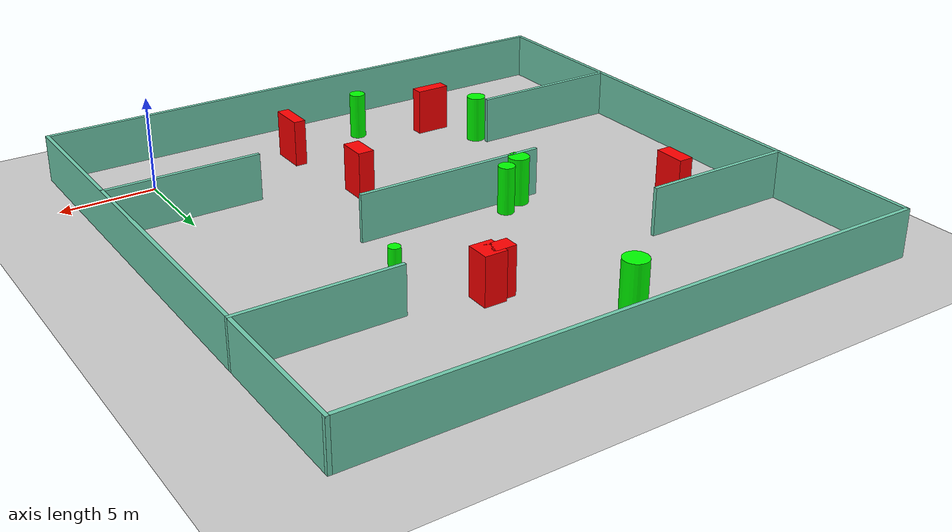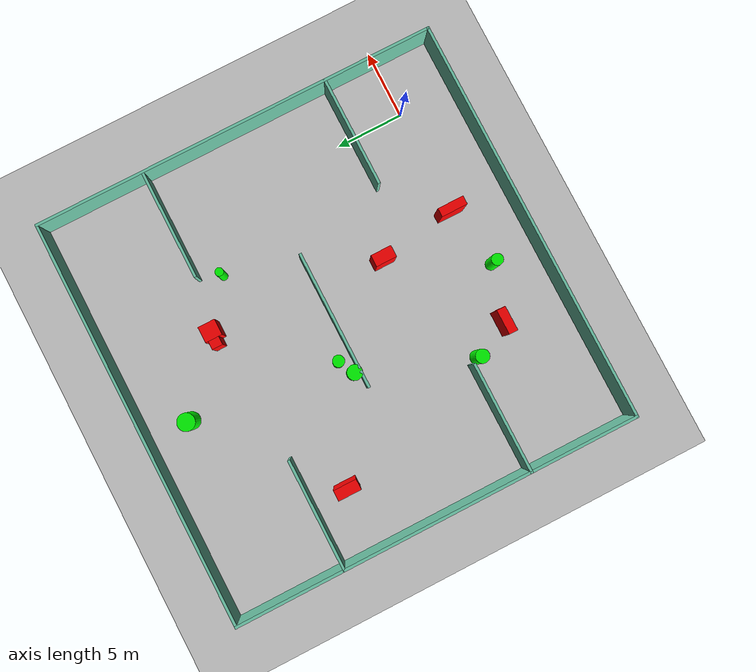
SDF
<sdf version="1.7">
 <world name="default">
  <light name="sun" type="directional">
   <pose>0 0 10 0 -0 0</pose>
   <diffuse>0.8 0.8 0.8 1</diffuse>
   <specular>0.2 0.2 0.2 1</specular>
   <attenuation>
    <range>1000</range>
    <constant>0.9</constant>
    <linear>0.01</linear>
    <quadratic>0.001</quadratic>
   </attenuation>
   <direction>-0.5 0.1 -0.9</direction>
   <spot><inner_angle>0</inner_angle><outer_angle>0</outer_angle><falloff>0</falloff></spot>
  </light>
  <model name="ground_plane">
   <static>1</static>
   <link name="link">
    <collision name="collision">
     <geometry><plane><normal>0 0 1</normal><size>100 100</size></plane></geometry>
     <surface>
      <contact><collide_bitmask>65535</collide_bitmask></contact>
      <friction><ode><mu>100</mu><mu2>50</mu2></ode></friction>
     </surface>
    </collision>
    <visual name="visual">
     <cast_shadows>0</cast_shadows>
     <geometry><plane><normal>0 0 1</normal><size>100 100</size></plane></geometry>
     <material>
      <script><uri>file://media/materials/scripts/gazebo.material</uri><name>Gazebo/Grey</name></script>
     </material>
    </visual>
   </link>
  </model>
  <gravity>0 0 -9.8</gravity>
  <magnetic_field>6e-06 2.3e-05 -4.2e-05</magnetic_field>
  <atmosphere type="adiabatic"/>
  <physics type="ode">
   <max_step_size>0.001</max_step_size>
   <real_time_factor>1</real_time_factor>
   <real_time_update_rate>1000</real_time_update_rate>
  </physics>
  <scene><ambient>0.4 0.4 0.4 1</ambient><background>0.7 0.7 0.7 1</background><shadows>1</shadows></scene>
  <spherical_coordinates>
   <surface_model>EARTH_WGS84</surface_model>
   <latitude_deg>0</latitude_deg>
   <longitude_deg>0</longitude_deg>
   <elevation>0</elevation>
   <heading_deg>0</heading_deg>
  </spherical_coordinates>
  <model name="my_base_walls">
   <link name="Wall_10">
    <collision name="Wall_10_Collision">
     <geometry><box><size>8.2 0.2 2.5</size></box></geometry>
     <pose>0 0 1.25 0 -0 0</pose>
    </collision>
    <visual name="Wall_10_Visual">
     <pose>0 0 1.25 0 -0 0</pose>
     <geometry><box><size>8.2 0.2 2.5</size></box></geometry>
     <material>
      <script><uri>file://media/materials/scripts/gazebo.material</uri><name>Gazebo/Grey</name></script>
      <ambient>0.435294 0.796078 0.67451 1</ambient>
     </material>
     <meta><layer>0</layer></meta>
    </visual>
    <pose>-11 -7 0 0 -0 0</pose>
   </link>
   <link name="Wall_12">
    <collision name="Wall_12_Collision">
     <geometry><box><size>8.2 0.2 2.5</size></box></geometry>
     <pose>0 0 1.25 0 -0 0</pose>
    </collision>
    <visual name="Wall_12_Visual">
     <pose>0 0 1.25 0 -0 0</pose>
     <geometry><box><size>8.2 0.2 2.5</size></box></geometry>
     <material>
      <script><uri>file://media/materials/scripts/gazebo.material</uri><name>Gazebo/Grey</name></script>
      <ambient>0.435294 0.796078 0.67451 1</ambient>
     </material>
     <meta><layer>0</layer></meta>
    </visual>
    <pose>-11 7 0 0 -0 0</pose>
   </link>
   <link name="Wall_14">
    <collision name="Wall_14_Collision">
     <geometry><box><size>8.2 0.2 2.5</size></box></geometry>
     <pose>0 0 1.25 0 -0 0</pose>
    </collision>
    <visual name="Wall_14_Visual">
     <pose>0 0 1.25 0 -0 0</pose>
     <geometry><box><size>8.2 0.2 2.5</size></box></geometry>
     <material>
      <script><uri>file://media/materials/scripts/gazebo.material</uri><name>Gazebo/Grey</name></script>
      <ambient>0.435294 0.796078 0.67451 1</ambient>
     </material>
     <meta><layer>0</layer></meta>
    </visual>
    <pose>11 7 0 0 -0 3.14159</pose>
   </link>
   <link name="Wall_16">
    <collision name="Wall_16_Collision">
     <geometry><box><size>10.2 0.2 2.5</size></box></geometry>
     <pose>0 0 1.25 0 -0 0</pose>
    </collision>
    <visual name="Wall_16_Visual">
     <pose>0 0 1.25 0 -0 0</pose>
     <geometry><box><size>10.2 0.2 2.5</size></box></geometry>
     <material>
      <script><uri>file://media/materials/scripts/gazebo.material</uri><name>Gazebo/Grey</name></script>
      <ambient>0.435294 0.796078 0.67451 1</ambient>
     </material>
     <meta><layer>0</layer></meta>
    </visual>
    <pose>0 0 0 0 -0 3.14159</pose>
   </link>
   <link name="Wall_2">
    <collision name="Wall_2_Collision">
     <geometry><box><size>30.2 0.2 2.5</size></box></geometry>
     <pose>0 0 1.25 0 -0 0</pose>
    </collision>
    <visual name="Wall_2_Visual">
     <pose>0 0 1.25 0 -0 0</pose>
     <geometry><box><size>30.2 0.2 2.5</size></box></geometry>
     <material>
      <script><uri>file://media/materials/scripts/gazebo.material</uri><name>Gazebo/Grey</name></script>
      <ambient>0.435294 0.796078 0.67451 1</ambient>
     </material>
     <meta><layer>0</layer></meta>
    </visual>
    <pose>0 -15 0 0 -0 3.14159</pose>
   </link>
   <link name="Wall_3">
    <collision name="Wall_3_Collision">
     <geometry><box><size>30.2 0.2 2.5</size></box></geometry>
     <pose>0 0 1.25 0 -0 0</pose>
    </collision>
    <visual name="Wall_3_Visual">
     <pose>0 0 1.25 0 -0 0</pose>
     <geometry><box><size>30.2 0.2 2.5</size></box></geometry>
     <material>
      <script><uri>file://media/materials/scripts/gazebo.material</uri><name>Gazebo/Grey</name></script>
      <ambient>0.435294 0.796078 0.67451 1</ambient>
     </material>
     <meta><layer>0</layer></meta>
    </visual>
    <pose>-15 0 0 0 -0 1.5708</pose>
   </link>
   <link name="Wall_4">
    <collision name="Wall_4_Collision">
     <geometry><box><size>30.2 0.2 2.5</size></box></geometry>
     <pose>0 0 1.25 0 -0 0</pose>
    </collision>
    <visual name="Wall_4_Visual">
     <pose>0 0 1.25 0 -0 0</pose>
     <geometry><box><size>30.2 0.2 2.5</size></box></geometry>
     <material>
      <script><uri>file://media/materials/scripts/gazebo.material</uri><name>Gazebo/Grey</name></script>
      <ambient>0.435294 0.796078 0.67451 1</ambient>
     </material>
     <meta><layer>0</layer></meta>
    </visual>
    <pose>0 15 0 0 -0 0</pose>
   </link>
   <link name="Wall_6">
    <collision name="Wall_6_Collision">
     <geometry><box><size>30.2 0.2 2.5</size></box></geometry>
     <pose>0 0 1.25 0 -0 0</pose>
    </collision>
    <visual name="Wall_6_Visual">
     <pose>0 0 1.25 0 -0 0</pose>
     <geometry><box><size>30.2 0.2 2.5</size></box></geometry>
     <material>
      <script><uri>file://media/materials/scripts/gazebo.material</uri><name>Gazebo/Grey</name></script>
      <ambient>0.435294 0.796078 0.67451 1</ambient>
     </material>
     <meta><layer>0</layer></meta>
    </visual>
    <pose>15 0 0 0 -0 1.5708</pose>
   </link>
   <link name="Wall_8">
    <collision name="Wall_8_Collision">
     <geometry><box><size>8.2 0.2 2.5</size></box></geometry>
     <pose>0 0 1.25 0 -0 0</pose>
    </collision>
    <visual name="Wall_8_Visual">
     <pose>0 0 1.25 0 -0 0</pose>
     <geometry><box><size>8.2 0.2 2.5</size></box></geometry>
     <material>
      <script><uri>file://media/materials/scripts/gazebo.material</uri><name>Gazebo/Grey</name></script>
      <ambient>0.435294 0.796078 0.67451 1</ambient>
     </material>
     <meta><layer>0</layer></meta>
    </visual>
    <pose>11 -7 0 0 -0 3.14159</pose>
   </link>
   <static>1</static>
   <pose>-11 11 0 0 -0 0</pose>
  </model>
  <model name="cylinder1">
   <static>1</static>
   <link name="link">
    <inertial>
     <mass>1</mass>
     <inertia><ixx>0.5</ixx><ixy>0</ixy><ixz>0</ixz><iyy>0.5</iyy><iyz>0</iyz><izz>1</izz></inertia>
    </inertial>
    <collision name="collision">
     <geometry><cylinder><radius>0.4266876340388024</radius><length>2.5</length></cylinder></geometry>
    </collision>
    <visual name="visual">
     <geometry><cylinder><radius>0.4266876340388024</radius><length>2.5</length></cylinder></geometry>
     <material>
      <ambient>0 1 0 1</ambient>
      <diffuse>0 1 0 1</diffuse>
      <specular>0.1 0.1 0.1 1</specular>
      <emissive>0 0 0 0</emissive>
     </material>
    </visual>
   </link>
   <pose>-13.571458224470954 12.015544865829913 1.25 0 0 0</pose>
  </model>
  <model name="cylinder2">
   <static>1</static>
   <link name="link">
    <inertial>
     <mass>1</mass>
     <inertia><ixx>0.5</ixx><ixy>0</ixy><ixz>0</ixz><iyy>0.5</iyy><iyz>0</iyz><izz>1</izz></inertia>
    </inertial>
    <collision name="collision">
     <geometry><cylinder><radius>0.42688563672893104</radius><length>2.5</length></cylinder></geometry>
    </collision>
    <visual name="visual">
     <geometry><cylinder><radius>0.42688563672893104</radius><length>2.5</length></cylinder></geometry>
     <material>
      <ambient>0 1 0 1</ambient>
      <diffuse>0 1 0 1</diffuse>
      <specular>0.1 0.1 0.1 1</specular>
      <emissive>0 0 0 0</emissive>
     </material>
    </visual>
   </link>
   <pose>-12.38654453123493 -0.6876759664993002 1.25 0 0 0</pose>
  </model>
  <model name="cylinder3">
   <static>1</static>
   <link name="link">
    <inertial>
     <mass>1</mass>
     <inertia><ixx>0.5</ixx><ixy>0</ixy><ixz>0</ixz><iyy>0.5</iyy><iyz>0</iyz><izz>1</izz></inertia>
    </inertial>
    <collision name="collision">
     <geometry><cylinder><radius>0.30085742159677453</radius><length>2.5</length></cylinder></geometry>
    </collision>
    <visual name="visual">
     <geometry><cylinder><radius>0.30085742159677453</radius><length>2.5</length></cylinder></geometry>
     <material>
      <ambient>0 1 0 1</ambient>
      <diffuse>0 1 0 1</diffuse>
      <specular>0.1 0.1 0.1 1</specular>
      <emissive>0 0 0 0</emissive>
     </material>
    </visual>
   </link>
   <pose>-4.5195155898103785 16.41272699285123 1.25 0 0 0</pose>
  </model>
  <model name="cylinder4">
   <static>1</static>
   <link name="link">
    <inertial>
     <mass>1</mass>
     <inertia><ixx>0.5</ixx><ixy>0</ixy><ixz>0</ixz><iyy>0.5</iyy><iyz>0</iyz><izz>1</izz></inertia>
    </inertial>
    <collision name="collision">
     <geometry><cylinder><radius>0.5007293693791446</radius><length>2.5</length></cylinder></geometry>
    </collision>
    <visual name="visual">
     <geometry><cylinder><radius>0.5007293693791446</radius><length>2.5</length></cylinder></geometry>
     <material>
      <ambient>0 1 0 1</ambient>
      <diffuse>0 1 0 1</diffuse>
      <specular>0.1 0.1 0.1 1</specular>
      <emissive>0 0 0 0</emissive>
     </material>
    </visual>
   </link>
   <pose>-17.70700902899331 3.274008346702443 1.25 0 0 0</pose>
  </model>
  <model name="cylinder5">
   <static>1</static>
   <link name="link">
    <inertial>
     <mass>1</mass>
     <inertia><ixx>0.5</ixx><ixy>0</ixy><ixz>0</ixz><iyy>0.5</iyy><iyz>0</iyz><izz>1</izz></inertia>
    </inertial>
    <collision name="collision">
     <geometry><cylinder><radius>0.6353203919154258</radius><length>2.5</length></cylinder></geometry>
    </collision>
    <visual name="visual">
     <geometry><cylinder><radius>0.6353203919154258</radius><length>2.5</length></cylinder></geometry>
     <material>
      <ambient>0 1 0 1</ambient>
      <diffuse>0 1 0 1</diffuse>
      <specular>0.1 0.1 0.1 1</specular>
      <emissive>0 0 0 0</emissive>
     </material>
    </visual>
   </link>
   <pose>-12.520417866064506 22.92487439532976 1.25 0 0 0</pose>
  </model>
  <model name="cylinder6">
   <static>1</static>
   <link name="link">
    <inertial>
     <mass>1</mass>
     <inertia><ixx>0.5</ixx><ixy>0</ixy><ixz>0</ixz><iyy>0.5</iyy><iyz>0</iyz><izz>1</izz></inertia>
    </inertial>
    <collision name="collision">
     <geometry><cylinder><radius>0.5472970622699221</radius><length>2.5</length></cylinder></geometry>
    </collision>
    <visual name="visual">
     <geometry><cylinder><radius>0.5472970622699221</radius><length>2.5</length></cylinder></geometry>
     <material>
      <ambient>0 1 0 1</ambient>
      <diffuse>0 1 0 1</diffuse>
      <specular>0.1 0.1 0.1 1</specular>
      <emissive>0 0 0 0</emissive>
     </material>
    </visual>
   </link>
   <pose>-14.747715136421638 11.39482203689235 1.25 0 0 0</pose>
  </model>
  <model name="box1">
   <static>1</static>
   <link name="link">
    <inertial>
     <mass>1</mass>
     <inertia><ixx>0.083</ixx><ixy>0</ixy><ixz>0</ixz><iyy>0.083</iyy><iyz>0</iyz><izz>0.083</izz></inertia>
    </inertial>
    <collision name="collision">
     <geometry><box><size>0.6363445106198986 1.9322758042163668 2.5</size></box></geometry>
    </collision>
    <visual name="visual">
     <geometry><box><size>0.6363445106198986 1.9322758042163668 2.5</size></box></geometry>
     <material>
      <ambient>1 0 0 1</ambient>
      <diffuse>1 0 0 1</diffuse>
      <specular>0.1 0.1 0.1 1</specular>
      <emissive>0 0 0 0</emissive>
     </material>
    </visual>
    <sensor name="my_contact" type="contact">
     <contact><collision>box_collision</collision><topic>__default_topic__</topic></contact>
    </sensor>
   </link>
   <pose>-7.785087934740918 0.3088202890080267 1.25 0 0 0</pose>
  </model>
  <model name="box2">
   <static>1</static>
   <link name="link">
    <inertial>
     <mass>1</mass>
     <inertia><ixx>0.083</ixx><ixy>0</ixy><ixz>0</ixz><iyy>0.083</iyy><iyz>0</iyz><izz>0.083</izz></inertia>
    </inertial>
    <collision name="collision">
     <geometry><box><size>0.8619125858098518 1.5261571540223835 2.5</size></box></geometry>
    </collision>
    <visual name="visual">
     <geometry><box><size>0.8619125858098518 1.5261571540223835 2.5</size></box></geometry>
     <material>
      <ambient>1 0 0 1</ambient>
      <diffuse>1 0 0 1</diffuse>
      <specular>0.1 0.1 0.1 1</specular>
      <emissive>0 0 0 0</emissive>
     </material>
    </visual>
    <sensor name="my_contact" type="contact">
     <contact><collision>box_collision</collision><topic>__default_topic__</topic></contact>
    </sensor>
   </link>
   <pose>-8.656926308424246 6.037549955394244 1.25 0 0 0</pose>
  </model>
  <model name="box3">
   <static>1</static>
   <link name="link">
    <inertial>
     <mass>1</mass>
     <inertia><ixx>0.083</ixx><ixy>0</ixy><ixz>0</ixz><iyy>0.083</iyy><iyz>0</iyz><izz>0.083</izz></inertia>
    </inertial>
    <collision name="collision">
     <geometry><box><size>1.8231755535009242 0.6546808883871479 2.5</size></box></geometry>
    </collision>
    <visual name="visual">
     <geometry><box><size>1.8231755535009242 0.6546808883871479 2.5</size></box></geometry>
     <material>
      <ambient>1 0 0 1</ambient>
      <diffuse>1 0 0 1</diffuse>
      <specular>0.1 0.1 0.1 1</specular>
      <emissive>0 0 0 0</emissive>
     </material>
    </visual>
    <sensor name="my_contact" type="contact">
     <contact><collision>box_collision</collision><topic>__default_topic__</topic></contact>
    </sensor>
   </link>
   <pose>-16.336690580679925 0.6681147579529898 1.25 0 0 0</pose>
  </model>
  <model name="box4">
   <static>1</static>
   <link name="link">
    <inertial>
     <mass>1</mass>
     <inertia><ixx>0.083</ixx><ixy>0</ixy><ixz>0</ixz><iyy>0.083</iyy><iyz>0</iyz><izz>0.083</izz></inertia>
    </inertial>
    <collision name="collision">
     <geometry><box><size>0.7873393761232248 1.6943415979697398 2.5</size></box></geometry>
    </collision>
    <visual name="visual">
     <geometry><box><size>0.7873393761232248 1.6943415979697398 2.5</size></box></geometry>
     <material>
      <ambient>1 0 0 1</ambient>
      <diffuse>1 0 0 1</diffuse>
      <specular>0.1 0.1 0.1 1</specular>
      <emissive>0 0 0 0</emissive>
     </material>
    </visual>
    <sensor name="my_contact" type="contact">
     <contact><collision>box_collision</collision><topic>__default_topic__</topic></contact>
    </sensor>
   </link>
   <pose>-21.439592603311283 15.426082663467525 1.25 0 0 0</pose>
  </model>
  <model name="box5">
   <static>1</static>
   <link name="link">
    <inertial>
     <mass>1</mass>
     <inertia><ixx>0.083</ixx><ixy>0</ixy><ixz>0</ixz><iyy>0.083</iyy><iyz>0</iyz><izz>0.083</izz></inertia>
    </inertial>
    <collision name="collision">
     <geometry><box><size>1.1655659379691068 1.2471014248522225 2.5</size></box></geometry>
    </collision>
    <visual name="visual">
     <geometry><box><size>1.1655659379691068 1.2471014248522225 2.5</size></box></geometry>
     <material>
      <ambient>1 0 0 1</ambient>
      <diffuse>1 0 0 1</diffuse>
      <specular>0.1 0.1 0.1 1</specular>
      <emissive>0 0 0 0</emissive>
     </material>
    </visual>
    <sensor name="my_contact" type="contact">
     <contact><collision>box_collision</collision><topic>__default_topic__</topic></contact>
    </sensor>
   </link>
   <pose>-7.802233707635205 18.77263706453411 1.25 0 0 0</pose>
  </model>
  <model name="box6">
   <static>1</static>
   <link name="link">
    <inertial>
     <mass>1</mass>
     <inertia><ixx>0.083</ixx><ixy>0</ixy><ixz>0</ixz><iyy>0.083</iyy><iyz>0</iyz><izz>0.083</izz></inertia>
    </inertial>
    <collision name="collision">
     <geometry><box><size>1.3736453833900468 0.7879877479769886 2.5</size></box></geometry>
    </collision>
    <visual name="visual">
     <geometry><box><size>1.3736453833900468 0.7879877479769886 2.5</size></box></geometry>
     <material>
      <ambient>1 0 0 1</ambient>
      <diffuse>1 0 0 1</diffuse>
      <specular>0.1 0.1 0.1 1</specular>
      <emissive>0 0 0 0</emissive>
     </material>
    </visual>
    <sensor name="my_contact" type="contact">
     <contact><collision>box_collision</collision><topic>__default_topic__</topic></contact>
    </sensor>
   </link>
   <pose>-8.31866038839636 18.803351861580623 1.25 0 0 0</pose>
  </model>
 </world>
</sdf>
